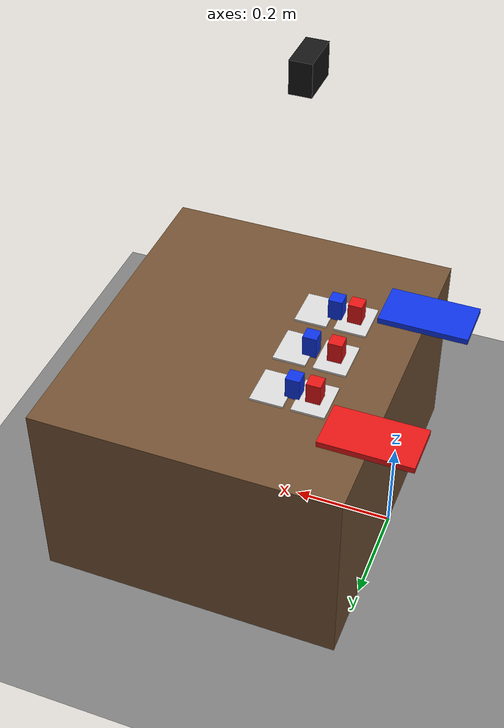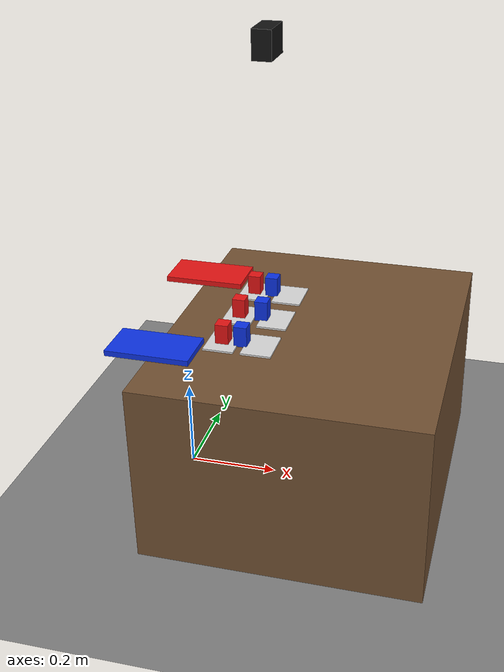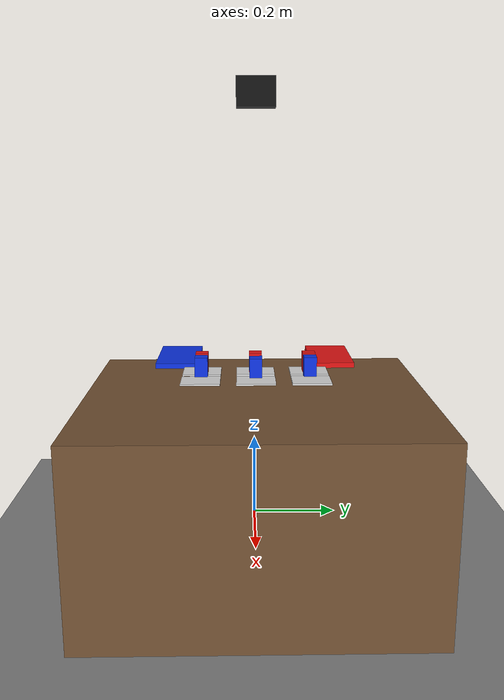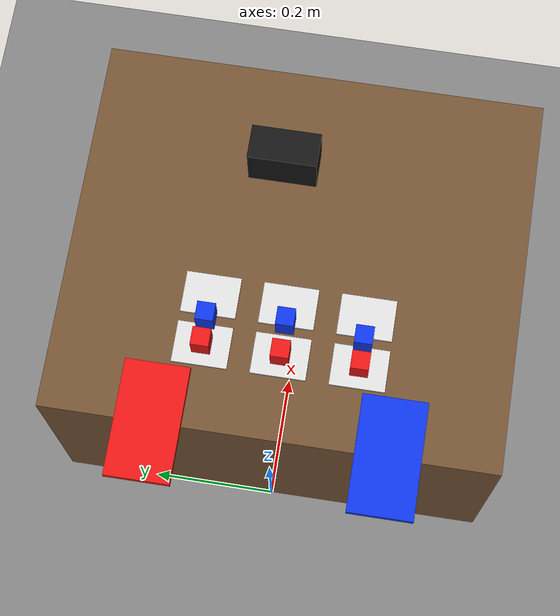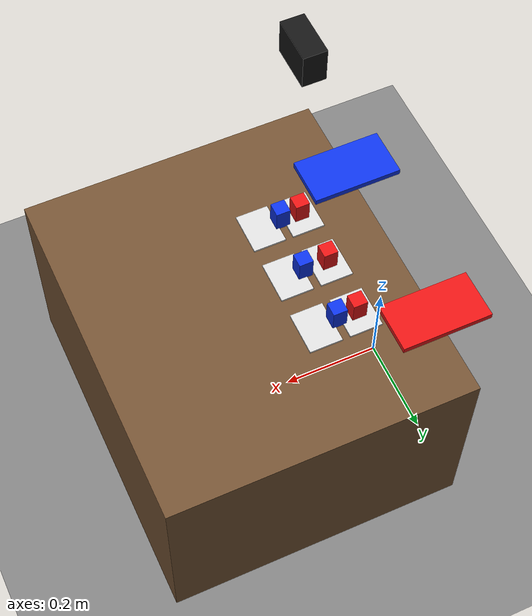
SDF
<?xml version="1.0"?>
<sdf version="1.6">
  <world name="e3_sorting_world">
    <plugin name="model_attachment_plugin"
            filename="libgazebo_model_attachment_plugin_lib.so"/>

    <plugin name="gazebo_ros_state"
            filename="libgazebo_ros_state.so">
      <ros>
        <namespace>/gazebo</namespace>
      </ros>
      <update_rate>50.0</update_rate>
    </plugin>

    <light name="sun" type="directional">
      <cast_shadows>true</cast_shadows>
      <pose>0 0 10 0 0 0</pose>
      <diffuse>0.85 0.85 0.85 1</diffuse>
      <specular>0.2 0.2 0.2 1</specular>
      <attenuation>
        <range>1000</range>
        <constant>0.9</constant>
        <linear>0.01</linear>
        <quadratic>0.001</quadratic>
      </attenuation>
      <direction>-0.3 0.1 -0.9</direction>
    </light>

    <model name="ground_plane">
      <static>true</static>
      <link name="ground_link">
        <collision name="ground_collision">
          <geometry>
            <plane>
              <normal>0 0 1</normal>
              <size>10 10</size>
            </plane>
          </geometry>
        </collision>
        <visual name="ground_visual">
          <geometry>
            <plane>
              <normal>0 0 1</normal>
              <size>10 10</size>
            </plane>
          </geometry>
          <material>
            <ambient>0.50 0.50 0.50 1</ambient>
            <diffuse>0.50 0.50 0.50 1</diffuse>
          </material>
        </visual>
      </link>
    </model>

    <physics name="default_physics" type="ode">
      <real_time_update_rate>1000</real_time_update_rate>
      <max_step_size>0.001</max_step_size>
      <real_time_factor>1.0</real_time_factor>
    </physics>

    <model name="table">
      <static>true</static>
      <pose>0.30 0 0.20 0 0 0</pose>
      <link name="table_link">
        <visual name="table_visual">
          <geometry>
            <box><size>0.60 0.70 0.40</size></box>
          </geometry>
          <material>
            <ambient>0.45 0.32 0.20 1</ambient>
            <diffuse>0.45 0.32 0.20 1</diffuse>
          </material>
        </visual>
        <collision name="table_collision">
          <geometry>
            <box><size>0.60 0.70 0.40</size></box>
          </geometry>
        </collision>
      </link>
    </model>

    <model name="grid_1">
      <static>true</static>
      <pose>0.13 0.12 0.403 0 0 0</pose>
      <link name="grid_link">
        <visual name="grid_visual">
          <geometry>
            <box><size>0.065 0.085 0.004</size></box>
          </geometry>
          <material>
            <ambient>0.85 0.85 0.85 1</ambient>
            <diffuse>0.85 0.85 0.85 1</diffuse>
          </material>
        </visual>
      </link>
    </model>

    <model name="pick_object_1">
      <pose>0.13 0.12 0.4255 0 0 0</pose>
      <link name="object_link">
        <inertial>
          <mass>0.04</mass>
          <inertia>
            <ixx>0.000015</ixx>
            <iyy>0.000015</iyy>
            <izz>0.000015</izz>
          </inertia>
        </inertial>

        <visual name="object_visual">
          <geometry>
            <box><size>0.028 0.028 0.045</size></box>
          </geometry>
          <material>
            <ambient>0.90 0.08 0.08 1</ambient>
            <diffuse>0.90 0.08 0.08 1</diffuse>
          </material>
        </visual>

        <collision name="object_collision">
          <geometry>
            <box><size>0.028 0.028 0.045</size></box>
          </geometry>
          <surface>
            <friction>
              <ode><mu>10.0</mu><mu2>10.0</mu2></ode>
            </friction>
            <contact>
              <ode>
                <kp>1000000.0</kp>
                <kd>10.0</kd>
                <min_depth>0.001</min_depth>
                <max_vel>0.1</max_vel>
              </ode>
            </contact>
          </surface>
        </collision>
      </link>
    </model>

    <model name="grid_2">
      <static>true</static>
      <pose>0.21 0.12 0.403 0 0 0</pose>
      <link name="grid_link">
        <visual name="grid_visual">
          <geometry>
            <box><size>0.065 0.085 0.004</size></box>
          </geometry>
          <material>
            <ambient>0.85 0.85 0.85 1</ambient>
            <diffuse>0.85 0.85 0.85 1</diffuse>
          </material>
        </visual>
      </link>
    </model>

    <model name="pick_object_2">
      <pose>0.17 0.12 0.4255 0 0 0</pose>
      <link name="object_link">
        <inertial>
          <mass>0.04</mass>
          <inertia>
            <ixx>0.000015</ixx>
            <iyy>0.000015</iyy>
            <izz>0.000015</izz>
          </inertia>
        </inertial>

        <visual name="object_visual">
          <geometry>
            <box><size>0.028 0.028 0.045</size></box>
          </geometry>
          <material>
            <ambient>0.05 0.20 0.90 1</ambient>
            <diffuse>0.05 0.20 0.90 1</diffuse>
          </material>
        </visual>

        <collision name="object_collision">
          <geometry>
            <box><size>0.028 0.028 0.045</size></box>
          </geometry>
          <surface>
            <friction>
              <ode><mu>10.0</mu><mu2>10.0</mu2></ode>
            </friction>
            <contact>
              <ode>
                <kp>1000000.0</kp>
                <kd>10.0</kd>
                <min_depth>0.001</min_depth>
                <max_vel>0.1</max_vel>
              </ode>
            </contact>
          </surface>
        </collision>
      </link>
    </model>

    <model name="grid_3">
      <static>true</static>
      <pose>0.13 0.0 0.403 0 0 0</pose>
      <link name="grid_link">
        <visual name="grid_visual">
          <geometry>
            <box><size>0.065 0.085 0.004</size></box>
          </geometry>
          <material>
            <ambient>0.85 0.85 0.85 1</ambient>
            <diffuse>0.85 0.85 0.85 1</diffuse>
          </material>
        </visual>
      </link>
    </model>

    <model name="pick_object_3">
      <pose>0.13 0.0 0.4255 0 0 0</pose>
      <link name="object_link">
        <inertial>
          <mass>0.04</mass>
          <inertia>
            <ixx>0.000015</ixx>
            <iyy>0.000015</iyy>
            <izz>0.000015</izz>
          </inertia>
        </inertial>

        <visual name="object_visual">
          <geometry>
            <box><size>0.028 0.028 0.045</size></box>
          </geometry>
          <material>
            <ambient>0.90 0.08 0.08 1</ambient>
            <diffuse>0.90 0.08 0.08 1</diffuse>
          </material>
        </visual>

        <collision name="object_collision">
          <geometry>
            <box><size>0.028 0.028 0.045</size></box>
          </geometry>
          <surface>
            <friction>
              <ode><mu>10.0</mu><mu2>10.0</mu2></ode>
            </friction>
            <contact>
              <ode>
                <kp>1000000.0</kp>
                <kd>10.0</kd>
                <min_depth>0.001</min_depth>
                <max_vel>0.1</max_vel>
              </ode>
            </contact>
          </surface>
        </collision>
      </link>
    </model>

    <model name="grid_4">
      <static>true</static>
      <pose>0.21 0.0 0.403 0 0 0</pose>
      <link name="grid_link">
        <visual name="grid_visual">
          <geometry>
            <box><size>0.065 0.085 0.004</size></box>
          </geometry>
          <material>
            <ambient>0.85 0.85 0.85 1</ambient>
            <diffuse>0.85 0.85 0.85 1</diffuse>
          </material>
        </visual>
      </link>
    </model>

    <model name="pick_object_4">
      <pose>0.18 0.0 0.4255 0 0 0</pose>
      <link name="object_link">
        <inertial>
          <mass>0.04</mass>
          <inertia>
            <ixx>0.000015</ixx>
            <iyy>0.000015</iyy>
            <izz>0.000015</izz>
          </inertia>
        </inertial>

        <visual name="object_visual">
          <geometry>
            <box><size>0.028 0.028 0.045</size></box>
          </geometry>
          <material>
            <ambient>0.05 0.20 0.90 1</ambient>
            <diffuse>0.05 0.20 0.90 1</diffuse>
          </material>
        </visual>

        <collision name="object_collision">
          <geometry>
            <box><size>0.028 0.028 0.045</size></box>
          </geometry>
          <surface>
            <friction>
              <ode><mu>10.0</mu><mu2>10.0</mu2></ode>
            </friction>
            <contact>
              <ode>
                <kp>1000000.0</kp>
                <kd>10.0</kd>
                <min_depth>0.001</min_depth>
                <max_vel>0.1</max_vel>
              </ode>
            </contact>
          </surface>
        </collision>
      </link>
    </model>

    <model name="grid_5">
      <static>true</static>
      <pose>0.13 -0.12 0.403 0 0 0</pose>
      <link name="grid_link">
        <visual name="grid_visual">
          <geometry>
            <box><size>0.065 0.085 0.004</size></box>
          </geometry>
          <material>
            <ambient>0.85 0.85 0.85 1</ambient>
            <diffuse>0.85 0.85 0.85 1</diffuse>
          </material>
        </visual>
      </link>
    </model>

    <model name="pick_object_5">
      <pose>0.13 -0.12 0.4255 0 0 0</pose>
      <link name="object_link">
        <inertial>
          <mass>0.04</mass>
          <inertia>
            <ixx>0.000015</ixx>
            <iyy>0.000015</iyy>
            <izz>0.000015</izz>
          </inertia>
        </inertial>

        <visual name="object_visual">
          <geometry>
            <box><size>0.028 0.028 0.045</size></box>
          </geometry>
          <material>
            <ambient>0.90 0.08 0.08 1</ambient>
            <diffuse>0.90 0.08 0.08 1</diffuse>
          </material>
        </visual>

        <collision name="object_collision">
          <geometry>
            <box><size>0.028 0.028 0.045</size></box>
          </geometry>
          <surface>
            <friction>
              <ode><mu>10.0</mu><mu2>10.0</mu2></ode>
            </friction>
            <contact>
              <ode>
                <kp>1000000.0</kp>
                <kd>10.0</kd>
                <min_depth>0.001</min_depth>
                <max_vel>0.1</max_vel>
              </ode>
            </contact>
          </surface>
        </collision>
      </link>
    </model>

    <model name="grid_6">
      <static>true</static>
      <pose>0.21 -0.12 0.403 0 0 0</pose>
      <link name="grid_link">
        <visual name="grid_visual">
          <geometry>
            <box><size>0.065 0.085 0.004</size></box>
          </geometry>
          <material>
            <ambient>0.85 0.85 0.85 1</ambient>
            <diffuse>0.85 0.85 0.85 1</diffuse>
          </material>
        </visual>
      </link>
    </model>

    <model name="pick_object_6">
      <pose>0.17 -0.12 0.4255 0 0 0</pose>
      <link name="object_link">
        <inertial>
          <mass>0.04</mass>
          <inertia>
            <ixx>0.000015</ixx>
            <iyy>0.000015</iyy>
            <izz>0.000015</izz>
          </inertia>
        </inertial>

        <visual name="object_visual">
          <geometry>
            <box><size>0.028 0.028 0.045</size></box>
          </geometry>
          <material>
            <ambient>0.05 0.20 0.90 1</ambient>
            <diffuse>0.05 0.20 0.90 1</diffuse>
          </material>
        </visual>

        <collision name="object_collision">
          <geometry>
            <box><size>0.028 0.028 0.045</size></box>
          </geometry>
          <surface>
            <friction>
              <ode><mu>10.0</mu><mu2>10.0</mu2></ode>
            </friction>
            <contact>
              <ode>
                <kp>1000000.0</kp>
                <kd>10.0</kd>
                <min_depth>0.001</min_depth>
                <max_vel>0.1</max_vel>
              </ode>
            </contact>
          </surface>
        </collision>
      </link>
    </model>

    <model name="red_bin">
      <static>true</static>
      <pose>0.0 0.18 0.406 0 0 0</pose>
      <link name="region_link">
        <visual name="region_visual">
          <geometry>
            <box><size>0.18 0.10 0.012</size></box>
          </geometry>
          <material>
            <ambient>0.90 0.08 0.08 1</ambient>
            <diffuse>0.90 0.08 0.08 1</diffuse>
          </material>
        </visual>
        <collision name="region_collision">
          <geometry>
            <box><size>0.18 0.10 0.012</size></box>
          </geometry>
        </collision>
      </link>
    </model>

    <model name="blue_bin">
      <static>true</static>
      <pose>0.0 -0.18 0.406 0 0 0</pose>
      <link name="region_link">
        <visual name="region_visual">
          <geometry>
            <box><size>0.18 0.10 0.012</size></box>
          </geometry>
          <material>
            <ambient>0.05 0.20 0.90 1</ambient>
            <diffuse>0.05 0.20 0.90 1</diffuse>
          </material>
        </visual>
        <collision name="region_collision">
          <geometry>
            <box><size>0.18 0.10 0.012</size></box>
          </geometry>
        </collision>
      </link>
    </model>

    <model name="overhead_camera">
      <static>true</static>
      <pose>0.20 0 1.00 0 1.570796 0</pose>
      <link name="camera_link">
        <visual name="camera_body">
          <pose>0 0 0 0 0 0</pose>
          <geometry>
            <box><size>0.06 0.08 0.04</size></box>
          </geometry>
          <material>
            <ambient>0.08 0.08 0.08 1</ambient>
            <diffuse>0.08 0.08 0.08 1</diffuse>
          </material>
        </visual>

        <sensor name="rgb_camera" type="camera">
          <always_on>true</always_on>
          <update_rate>15.0</update_rate>
          <visualize>true</visualize>

          <camera>
            <horizontal_fov>1.0472</horizontal_fov>
            <image>
              <width>640</width>
              <height>480</height>
              <format>R8G8B8</format>
            </image>
            <clip>
              <near>0.05</near>
              <far>5.0</far>
            </clip>
          </camera>

          <plugin name="camera_controller"
                  filename="libgazebo_ros_camera.so">
            <ros>
              <namespace>/e3/camera</namespace>
              <remapping>image_raw:=image_raw</remapping>
              <remapping>camera_info:=camera_info</remapping>
            </ros>
            <camera_name>overhead_camera</camera_name>
            <frame_name>overhead_camera_link</frame_name>
          </plugin>
        </sensor>
      </link>
    </model>
  </world>
</sdf>
